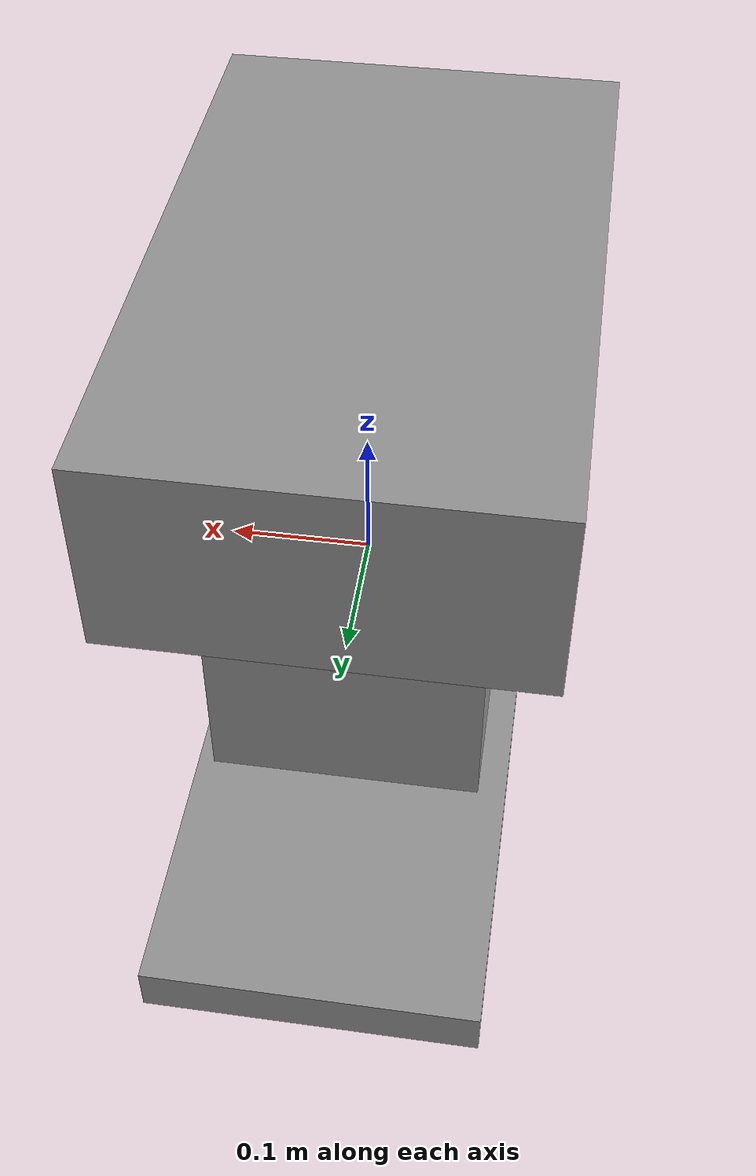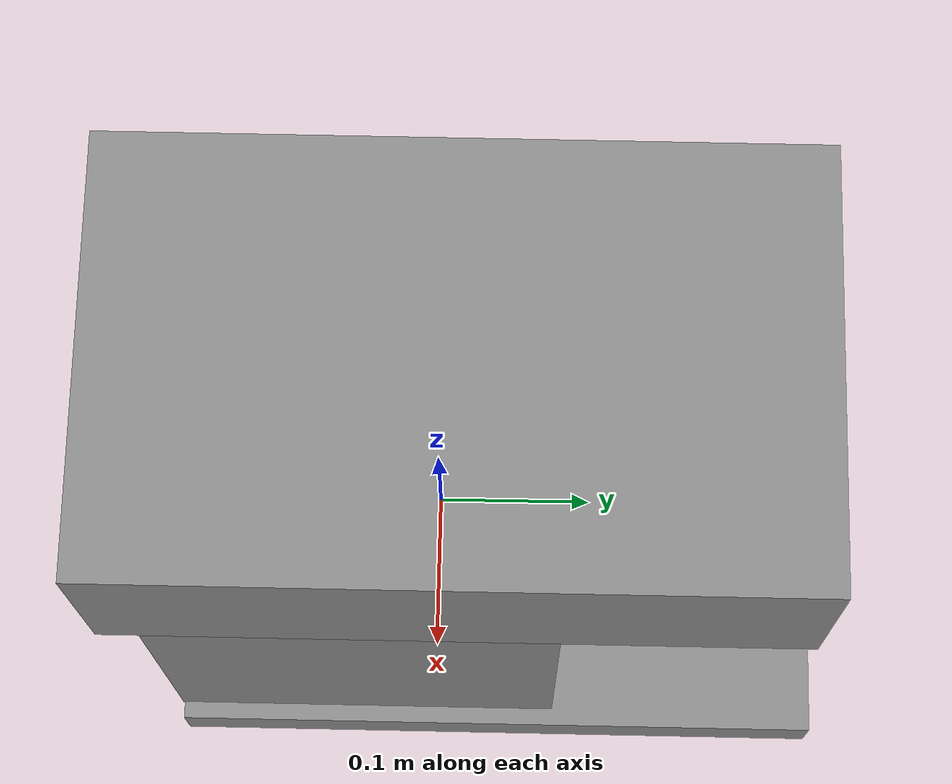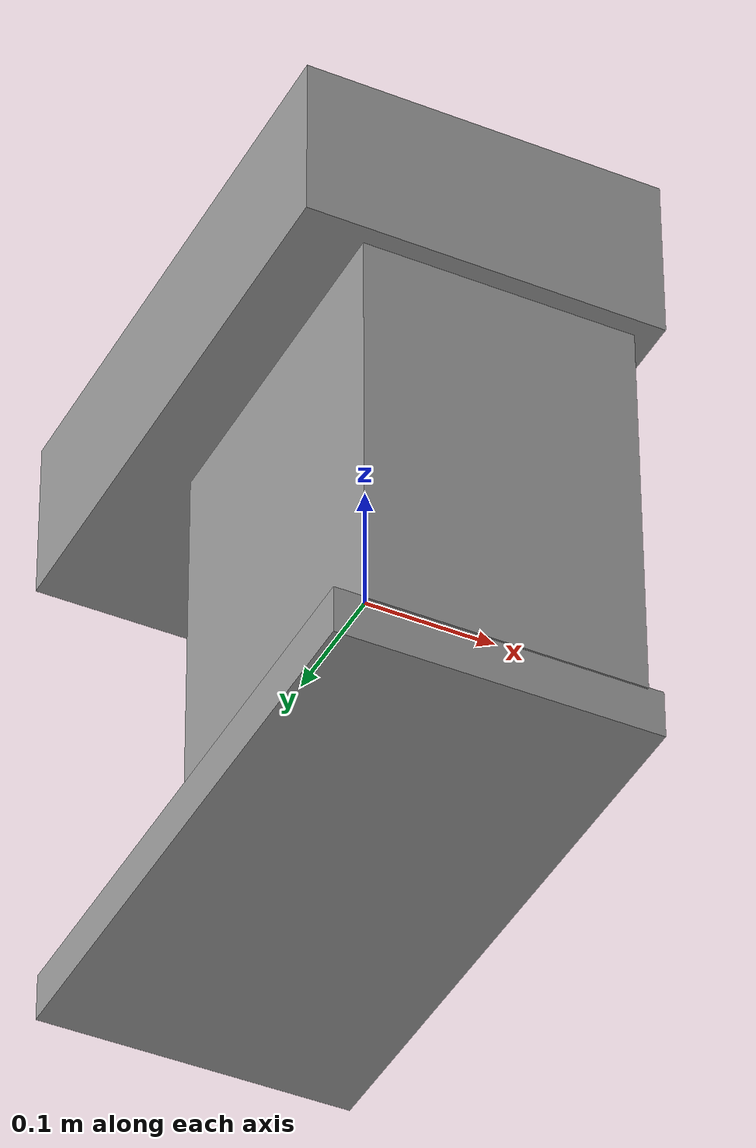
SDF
<?xml version='1.0'?>
<sdf version='1.7'>
  <model name='Coffee_Machine'>
    <link name='link_5'>
      <inertial>
        <mass>0.00415706</mass>
        <inertia>
          <ixx>7.41751e-05</ixx>
          <ixy>0</ixy>
          <ixz>0</ixz>
          <iyy>2.04665e-05</iyy>
          <iyz>0</iyz>
          <izz>9.36716e-05</izz>
        </inertia>
        <pose>0 0 0 0 -0 0</pose>
      </inertial>
      <pose>0.00228 0.040287 -0.193801 0 -0 0</pose>
      <visual name='visual'>
        <pose>0 0 0 0 -0 0</pose>
        <geometry>
          <box>
            <size>0.240166 0.461213 0.037416</size>
          </box>
        </geometry>
        <material>
          <lighting>1</lighting>
          <script>
            <uri>file://media/materials/scripts/gazebo.material</uri>
            <name>Gazebo/Grey</name>
          </script>
          <shader type='pixel'/>
          <emissive>0 0 0 1</emissive>
        </material>
        <transparency>0</transparency>
        <cast_shadows>1</cast_shadows>
      </visual>
      <collision name='collision'>
        <laser_retro>0</laser_retro>
        <max_contacts>10</max_contacts>
        <pose>0 0 0 0 -0 0</pose>
        <geometry>
          <box>
            <size>0.240166 0.461213 0.037416</size>
          </box>
        </geometry>
        <surface>
          <friction>
            <ode>
              <mu>1</mu>
              <mu2>1</mu2>
              <fdir1>0 0 0</fdir1>
              <slip1>0</slip1>
              <slip2>0</slip2>
            </ode>
            <torsional>
              <coefficient>1</coefficient>
              <patch_radius>0</patch_radius>
              <surface_radius>0</surface_radius>
              <use_patch_radius>1</use_patch_radius>
              <ode>
                <slip>0</slip>
              </ode>
            </torsional>
          </friction>
          <bounce>
            <restitution_coefficient>0</restitution_coefficient>
            <threshold>1e+06</threshold>
          </bounce>
          <contact>
            <collide_without_contact>0</collide_without_contact>
            <collide_without_contact_bitmask>1</collide_without_contact_bitmask>
            <collide_bitmask>1</collide_bitmask>
            <ode>
              <soft_cfm>0</soft_cfm>
              <soft_erp>0.2</soft_erp>
              <kp>1e+13</kp>
              <kd>1</kd>
              <max_vel>0.01</max_vel>
              <min_depth>0</min_depth>
            </ode>
            <bullet>
              <split_impulse>1</split_impulse>
              <split_impulse_penetration_threshold>-0.01</split_impulse_penetration_threshold>
              <soft_cfm>0</soft_cfm>
              <soft_erp>0.2</soft_erp>
              <kp>1e+13</kp>
              <kd>1</kd>
            </bullet>
          </contact>
        </surface>
      </collision>
    </link>
    <link name='link_6'>
      <inertial>
        <mass>0.0188786</mass>
        <inertia>
          <ixx>0.000293131</ixx>
          <ixy>0</ixy>
          <ixz>0</ixz>
          <iyy>0.000243767</iyy>
          <iyz>0</iyz>
          <izz>0.000183915</izz>
        </inertia>
        <pose>0 0 0 0 -0 0</pose>
      </inertial>
      <pose>0.006953 -0.055344 -0.009314 0 -0 0</pose>
      <visual name='visual'>
        <pose>0 0 0 0 -0 0</pose>
        <geometry>
          <box>
            <size>0.206793 0.272288 0.33494</size>
          </box>
        </geometry>
        <material>
          <lighting>1</lighting>
          <script>
            <uri>file://media/materials/scripts/gazebo.material</uri>
            <name>Gazebo/Grey</name>
          </script>
          <shader type='pixel'/>
          <emissive>0 0 0 1</emissive>
        </material>
        <transparency>0</transparency>
        <cast_shadows>1</cast_shadows>
      </visual>
      <collision name='collision'>
        <laser_retro>0</laser_retro>
        <max_contacts>10</max_contacts>
        <pose>0 0 0 0 -0 0</pose>
        <geometry>
          <box>
            <size>0.206793 0.272288 0.33494</size>
          </box>
        </geometry>
        <surface>
          <friction>
            <ode>
              <mu>1</mu>
              <mu2>1</mu2>
              <fdir1>0 0 0</fdir1>
              <slip1>0</slip1>
              <slip2>0</slip2>
            </ode>
            <torsional>
              <coefficient>1</coefficient>
              <patch_radius>0</patch_radius>
              <surface_radius>0</surface_radius>
              <use_patch_radius>1</use_patch_radius>
              <ode>
                <slip>0</slip>
              </ode>
            </torsional>
          </friction>
          <bounce>
            <restitution_coefficient>0</restitution_coefficient>
            <threshold>1e+06</threshold>
          </bounce>
          <contact>
            <collide_without_contact>0</collide_without_contact>
            <collide_without_contact_bitmask>1</collide_without_contact_bitmask>
            <collide_bitmask>1</collide_bitmask>
            <ode>
              <soft_cfm>0</soft_cfm>
              <soft_erp>0.2</soft_erp>
              <kp>1e+13</kp>
              <kd>1</kd>
              <max_vel>0.01</max_vel>
              <min_depth>0</min_depth>
            </ode>
            <bullet>
              <split_impulse>1</split_impulse>
              <split_impulse_penetration_threshold>-0.01</split_impulse_penetration_threshold>
              <soft_cfm>0</soft_cfm>
              <soft_erp>0.2</soft_erp>
              <kp>1e+13</kp>
              <kd>1</kd>
            </bullet>
          </contact>
        </surface>
      </collision>
    </link>
    <link name='link_7'>
      <inertial>
        <mass>0.0161715</mass>
        <inertia>
          <ixx>0.000286446</ixx>
          <ixy>0</ixy>
          <ixz>0</ixz>
          <iyy>0.000124808</iyy>
          <iyz>0</iyz>
          <izz>0.000362588</izz>
        </inertia>
        <pose>0 0 0 0 -0 0</pose>
      </inertial>
      <pose>-0.009235 0.015057 0.203114 0 -0 0</pose>
      <visual name='visual'>
        <pose>0 0 0 0 -0 0</pose>
        <geometry>
          <box>
            <size>0.273052 0.441022 0.134373</size>
          </box>
        </geometry>
        <material>
          <lighting>1</lighting>
          <script>
            <uri>file://media/materials/scripts/gazebo.material</uri>
            <name>Gazebo/Grey</name>
          </script>
          <shader type='pixel'/>
          <emissive>0 0 0 1</emissive>
        </material>
        <transparency>0</transparency>
        <cast_shadows>1</cast_shadows>
      </visual>
      <collision name='collision'>
        <laser_retro>0</laser_retro>
        <max_contacts>10</max_contacts>
        <pose>0 0 0 0 -0 0</pose>
        <geometry>
          <box>
            <size>0.273052 0.441022 0.134373</size>
          </box>
        </geometry>
        <surface>
          <friction>
            <ode>
              <mu>1</mu>
              <mu2>1</mu2>
              <fdir1>0 0 0</fdir1>
              <slip1>0</slip1>
              <slip2>0</slip2>
            </ode>
            <torsional>
              <coefficient>1</coefficient>
              <patch_radius>0</patch_radius>
              <surface_radius>0</surface_radius>
              <use_patch_radius>1</use_patch_radius>
              <ode>
                <slip>0</slip>
              </ode>
            </torsional>
          </friction>
          <bounce>
            <restitution_coefficient>0</restitution_coefficient>
            <threshold>1e+06</threshold>
          </bounce>
          <contact>
            <collide_without_contact>0</collide_without_contact>
            <collide_without_contact_bitmask>1</collide_without_contact_bitmask>
            <collide_bitmask>1</collide_bitmask>
            <ode>
              <soft_cfm>0</soft_cfm>
              <soft_erp>0.2</soft_erp>
              <kp>1e+13</kp>
              <kd>1</kd>
              <max_vel>0.01</max_vel>
              <min_depth>0</min_depth>
            </ode>
            <bullet>
              <split_impulse>1</split_impulse>
              <split_impulse_penetration_threshold>-0.01</split_impulse_penetration_threshold>
              <soft_cfm>0</soft_cfm>
              <soft_erp>0.2</soft_erp>
              <kp>1e+13</kp>
              <kd>1</kd>
            </bullet>
          </contact>
        </surface>
      </collision>
    </link>
    <joint name='link_5_JOINT_0' type='fixed'>
      <parent>link_5</parent>
      <child>link_6</child>
      <pose>0 0 0 0 -0 0</pose>
      <physics>
        <ode>
          <limit>
            <cfm>0</cfm>
            <erp>0.2</erp>
          </limit>
          <suspension>
            <cfm>0</cfm>
            <erp>0.2</erp>
          </suspension>
        </ode>
      </physics>
    </joint>
    <joint name='link_6_JOINT_1' type='fixed'>
      <parent>link_6</parent>
      <child>link_7</child>
      <pose>0 0 0 0 -0 0</pose>
      <physics>
        <ode>
          <limit>
            <cfm>0</cfm>
            <erp>0.2</erp>
          </limit>
          <suspension>
            <cfm>0</cfm>
            <erp>0.2</erp>
          </suspension>
        </ode>
      </physics>
    </joint>
    <static>1</static>
    <allow_auto_disable>1</allow_auto_disable>
  </model>
</sdf>
